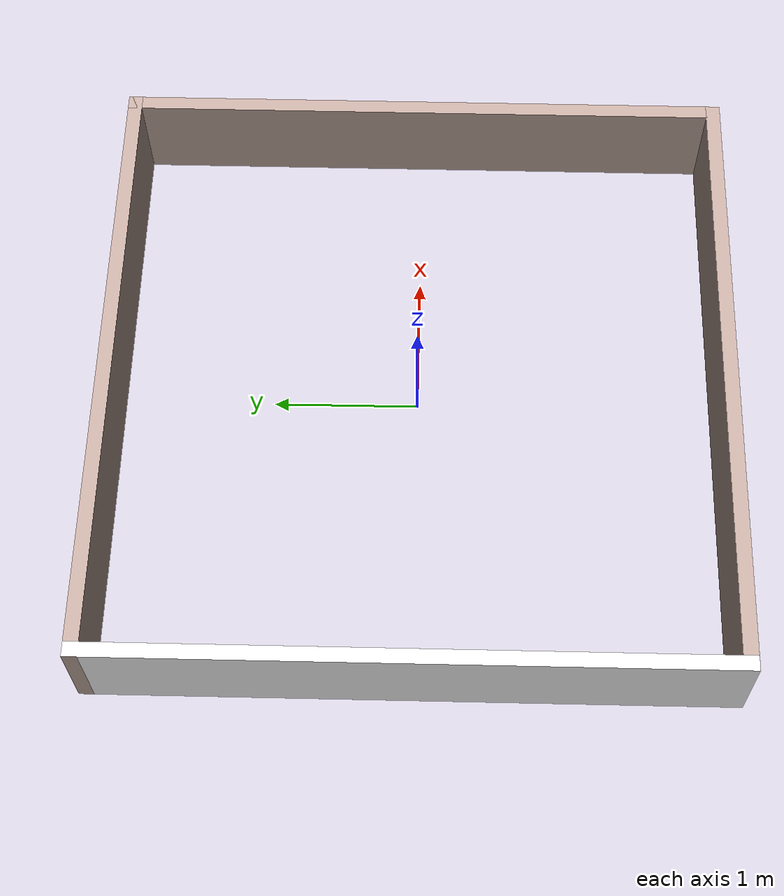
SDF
<?xml version="1.0"?>
<sdf version="1.6">
  <model name="map_walls">
    <static>true</static>

    <link name="south_wall">
      <pose>0 -2.1 0 0 0 0</pose>
      <collision name="collision">
        <pose>0 0 0.35 0 0 0</pose>
        <geometry><box><size>4.3 0.1 0.7</size></box></geometry>
      </collision>
      <visual name="visual">
        <pose>0 0 0.35 0 0 0</pose>
        <geometry><box><size>4.3 0.1 0.7</size></box></geometry>
        <material>
          <ambient>0.760784 0.662745 0.627451 1</ambient>
          <diffuse>0.760784 0.662745 0.627451 1</diffuse>
        </material>
      </visual>
    </link>

    <link name="east_wall">
      <pose>2.1 0 0 0 0 1.5708</pose>
      <collision name="collision">
        <pose>0 0 0.35 0 0 0</pose>
        <geometry><box><size>4.3 0.1 0.7</size></box></geometry>
      </collision>
      <visual name="visual">
        <pose>0 0 0.35 0 0 0</pose>
        <geometry><box><size>4.3 0.1 0.7</size></box></geometry>
        <material>
          <ambient>0.760784 0.662745 0.627451 1</ambient>
          <diffuse>0.760784 0.662745 0.627451 1</diffuse>
        </material>
      </visual>
    </link>

    <link name="north_wall">
      <pose>0 2.1 0 0 0 3.14159</pose>
      <collision name="collision">
        <pose>0 0 0.35 0 0 0</pose>
        <geometry><box><size>4.3 0.1 0.7</size></box></geometry>
      </collision>
      <visual name="visual">
        <pose>0 0 0.35 0 0 0</pose>
        <geometry><box><size>4.3 0.1 0.7</size></box></geometry>
        <material>
          <ambient>0.760784 0.662745 0.627451 1</ambient>
          <diffuse>0.760784 0.662745 0.627451 1</diffuse>
        </material>
      </visual>
    </link>

    <link name="west_wall">
      <pose>-2.1 0 0 0 0 -1.5708</pose>
      <collision name="collision">
        <pose>0 0 0.35 0 0 0</pose>
        <geometry><box><size>4.3 0.1 0.7</size></box></geometry>
      </collision>
      <visual name="visual">
        <pose>0 0 0.35 0 0 0</pose>
        <geometry><box><size>4.3 0.1 0.7</size></box></geometry>
        <material>
          <ambient>1 1 1 1</ambient>
          <diffuse>1 1 1 1</diffuse>
        </material>
      </visual>
    </link>
  </model>
</sdf>
